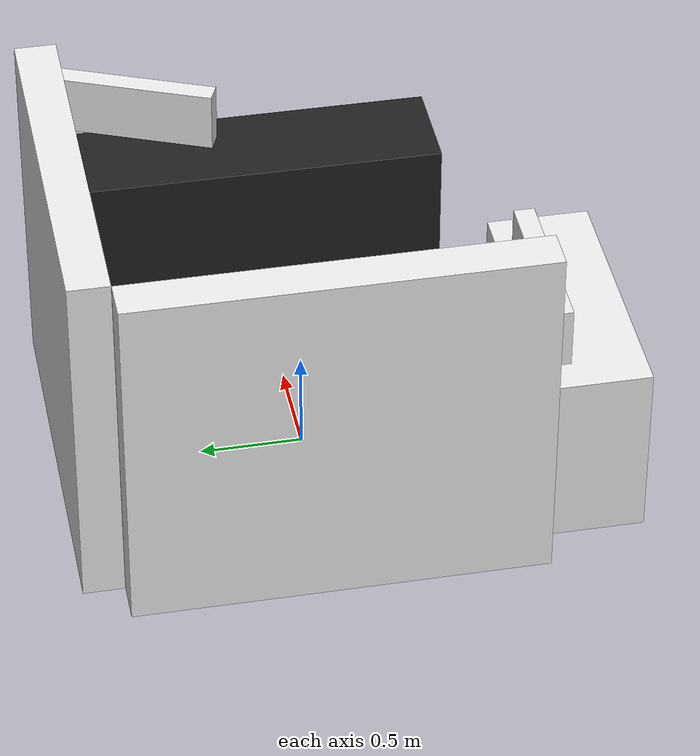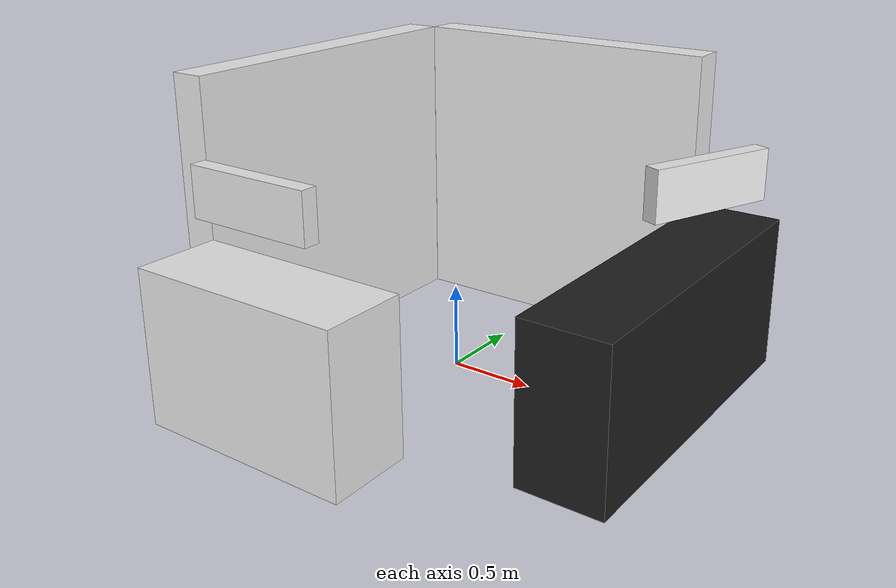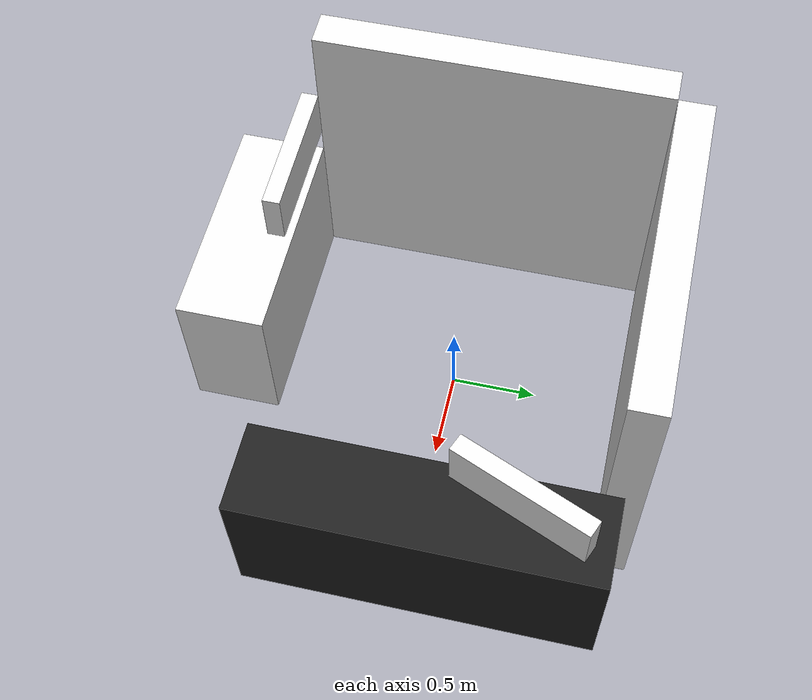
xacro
<?xml version="1.0" ?>
<robot name="lab_config" xmlns:xacro="http://www.ros.org/wiki/xacro">
<xacro:include filename="$(find rob_lab_mapping)/urdf/rob_lab_items_mesurments.xacro" />

      <link name="world"/>

      <link name="wall_1">
      <visual>
      <origin rpy="0 0 0" xyz="0 0 0"/>
      <geometry>
      <!-- size = w, h, l -->
      <box size="${first_wall_w} ${first_wall_l} ${first_wall_h}" />
      </geometry>
      <material name="white"/>
      </visual>
      <inertial>
      <origin xyz="0 0 0.0" rpy="0 0 0"/>
      <mass value="0.1"/>
      <inertia
      ixx="0.0" ixy="0.0" ixz="0.0"
      iyy="0.0" iyz="0.0"
      izz="0.0"/>
      </inertial>
      <collision>
      <origin rpy="0 0 0" xyz="0 0 0"/>
      <geometry>
      <box size="${first_wall_w} ${first_wall_l} ${first_wall_h}" />
      </geometry>
      </collision>
      </link>

         <link name="wall_2">
      <visual>
      <origin rpy="0 0 0" xyz="0 0 0"/>
      <geometry>
      <!-- size = w, h, l -->
      <box size="${second_wall_w} ${second_wall_l} ${second_wall_h}" />
      </geometry>
      <material name="white"/>
      </visual>
      <inertial>
      <origin xyz="0 0 0.0" rpy="0 0 0"/>
      <mass value="0.1"/>
      <inertia
      ixx="0.0" ixy="0.0" ixz="0.0"
      iyy="0.0" iyz="0.0"
      izz="0.0"/>
      </inertial>
      <collision>
      <origin rpy="0 0 0" xyz="0 0 0"/>
      <geometry>
      <box size="${second_wall_w} ${second_wall_l} ${second_wall_h}" />
      </geometry>
      </collision>
      </link>

      <link name="table_1">
      <visual>
      <origin rpy="0 0 0" xyz="0 0 0"/>
      <geometry>
      <!-- size = w, l, h -->
      <box size="${cmputer_table_1_w} ${cmputer_table_1_l} ${cmputer_table_1_h}" />
      </geometry>
      <material name="black"/>
      </visual>
      <inertial>
      <origin xyz="0 0 0.0" rpy="0 0 0"/>
      <mass value="0.1"/>
      <inertia
      ixx="0.0" ixy="0.0" ixz="0.0"
      iyy="0.0" iyz="0.0"
      izz="0.0"/>
      </inertial>
      <collision>
      <origin rpy="0 0 0" xyz="0 0 0"/>
      <geometry>
        <box size="${cmputer_table_1_w} ${cmputer_table_1_l} ${cmputer_table_1_h}" />
      </geometry>
      </collision>
      </link>

    <link name="table_2">
      <visual>
      <origin rpy="0 0 0" xyz="0 0 0"/>
      <geometry>
      <!-- size = w, l, h -->
      <box size="${cmputer_table_2_w} ${cmputer_table_2_l} ${cmputer_table_2_h}" />
      </geometry>
      <material name="white"/>
      </visual>
      <inertial>
      <origin xyz="0 0 0.0" rpy="0 0 0"/>
      <mass value="0.1"/>
      <inertia
      ixx="0.0" ixy="0.0" ixz="0.0"
      iyy="0.0" iyz="0.0"
      izz="0.0"/>
      </inertial>
      <collision>
      <origin rpy="0 0 0" xyz="0 0 0"/>
      <geometry>
      <box size="${cmputer_table_2_w} ${cmputer_table_2_l} ${cmputer_table_2_h}" />
      </geometry>
      </collision>
      </link>

      <link name="comuter_1">
      <visual>
      <origin rpy="0 0 0" xyz="0 0 0"/>
      <geometry>
      <!-- size = w, l, h -->
      <box size="${cmputer1_w} ${cmputer1_l} ${cmputer1_h}" />
      </geometry>
      <material name="white"/>
      </visual>
      <inertial>
      <origin xyz="0 0 0.0" rpy="0 0 0"/>
      <mass value="0.1"/>
      <inertia
      ixx="0.0" ixy="0.0" ixz="0.0"
      iyy="0.0" iyz="0.0"
      izz="0.0"/>
      </inertial>
      <collision>
      <origin rpy="0 0 0" xyz="0 0 0"/>
      <geometry>
      <box size="${cmputer1_w} ${cmputer1_l} ${cmputer1_h}" />
      </geometry>
      </collision>
      </link>

      <link name="comuter_2">
      <visual>
      <origin rpy="0 0 0" xyz="0 0 0"/>
      <geometry>
      <!-- size = w, l, h -->
      <box size="${cmputer2_w} ${cmputer2_l} ${cmputer2_h}" />
      </geometry>
      <material name="white"/>
      </visual>
      <inertial>
      <origin xyz="0 0 0.0" rpy="0 0 0"/>
      <mass value="0.1"/>
      <inertia
      ixx="0.0" ixy="0.0" ixz="0.0"
      iyy="0.0" iyz="0.0"
      izz="0.0"/>
      </inertial>
      <collision>
      <origin rpy="0 0 ${3.14/6}" xyz="0 0 0"/>
      <geometry>
      <box size="${cmputer2_w} ${cmputer2_l} ${cmputer2_h}" />
      </geometry>
      </collision>
      </link>

      <!-- Joint List Start -->
      <joint name="world_to_table" type="fixed">
      <parent link="world"/>
      <child link="wall_1"/>
      <origin
      xyz="-1 0  ${first_wall_h/2}"
      rpy="0 0 0" />
      </joint>

        <joint name="wall_connection" type="fixed">
      <parent link="wall_1"/>
      <child link="wall_2"/>
      <origin
      xyz="${second_wall_l/2 + first_wall_w/2} ${first_wall_l/2 + second_wall_w/2} 0"
      rpy="0 0 ${3.14/2}" />
      </joint> >

    <joint name="table_1_wall_2" type="fixed">
      <parent link="wall_2"/>
      <child link="table_1"/>
      <origin
      xyz=" ${-cmputer_table_1_l/2}  ${-second_wall_l/2 - cmputer_table_1_w/2} ${-second_wall_h/2 + cmputer_table_1_h/2}"
      rpy="0 0 ${3.14/2}"/>
      </joint>

      <joint name="table_2_wall_1" type="fixed">
      <parent link="wall_1"/>
      <child link="table_2"/>
      <origin
      xyz=" ${cmputer_table_2_l/2 + first_wall_w/2} ${-first_wall_l/2 - cmputer_table_2_w/2 } ${-first_wall_h/2 + cmputer_table_2_h/2}"
      rpy="0 0  ${3.14/2}"/>
      </joint>

      <joint name="comutetr_on_tabl_1" type="fixed">
      <parent link="table_1"/>
      <child link="comuter_1"/>
      <origin
      xyz=" 0 ${-cmputer_table_1_l/4} ${cmputer_table_1_h/2 + cmputer1_h}"
      rpy="0 0  ${-3.14/8}"/>
      </joint>

      <joint name="comuter_2to_2" type="fixed">
      <parent link="table_2"/>
      <child link="comuter_2"/>
      <origin
      xyz=" ${cmputer_table_2_w/2 - cmputer2_w/2} ${cmputer_table_2_l/5}  ${cmputer_table_2_h/2 + cmputer2_h} "
      rpy="0 0  0"/>
      </joint>

    <!-- Colos list  -->
     <gazebo reference="wall_1">
        <material>Gazebo/white</material>
    </gazebo>
     <gazebo reference="wall_2">
        <material>Gazebo/white</material>
    </gazebo>

         <gazebo reference="table_1">
        <material>Gazebo/Wood</material>
    </gazebo>
     <gazebo reference="table_2">
        <material>Gazebo/Wood</material>
    </gazebo>

     <gazebo reference="comuter_1">
        <material>Gazebo/Black</material>
    </gazebo>
 <gazebo reference="comuter_2">
        <material>Gazebo/Black</material>
    </gazebo>

    <gazebo>
        <static>true</static>
    </gazebo>

</robot>

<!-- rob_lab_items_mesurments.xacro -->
<robot xmlns:xacro="http://www.ros.org/wiki/xacro">

  <!-- first_wall_size-->
    <xacro:property name="first_wall_w" value="0.2" />
    <xacro:property name="first_wall_l" value="2" />
    <xacro:property name="first_wall_h" value="1.8" />

    <xacro:property name="second_wall_w" value="0.2" />
    <xacro:property name="second_wall_l" value="1.9" />
    <xacro:property name="second_wall_h" value="1.8" />

    <xacro:property name="cmputer_table_1_w" value="0.5" />
    <xacro:property name="cmputer_table_1_l" value="2" />
    <xacro:property name="cmputer_table_1_h" value="0.9" />

    <xacro:property name="cmputer_table_2_w" value="0.5" />
    <xacro:property name="cmputer_table_2_l" value="1.3" />
    <xacro:property name="cmputer_table_2_h" value="0.9" />

    <xacro:property name="cmputer1_w" value="0.1" />
    <xacro:property name="cmputer1_l" value="0.8" />
    <xacro:property name="cmputer1_h" value="0.3" />

    <xacro:property name="cmputer2_w" value="0.1" />
    <xacro:property name="cmputer2_l" value="0.8" />
    <xacro:property name="cmputer2_h" value="0.3" />

    <xacro:property name="camera_rail_r" value="0.01" />
    <xacro:property name="camera_rail_l" value="0.05" />

    <xacro:property name="camera_size" value="0.05" />

</robot>
